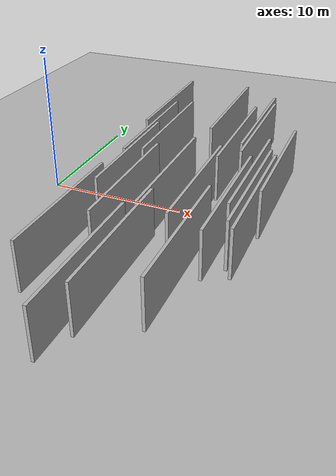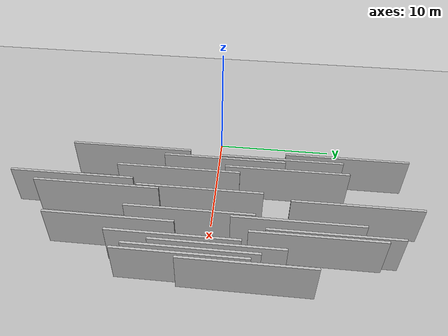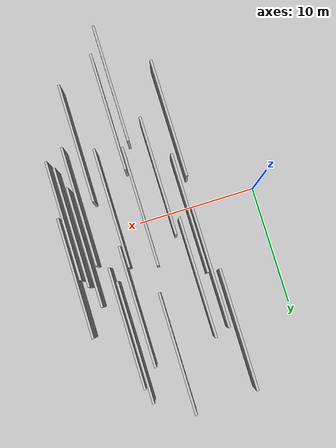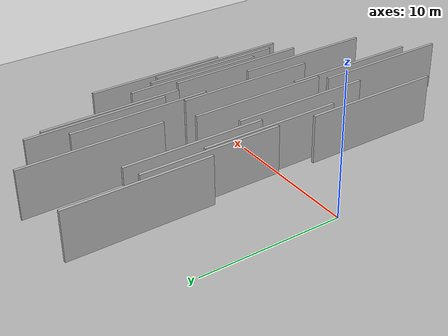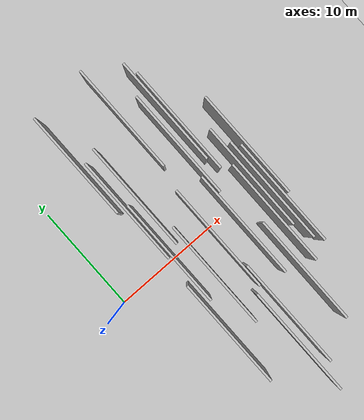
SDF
<?xml version="1.0" encoding="utf-8"?>

<sdf version="1.6">

   <world name="default">

      <gui fullscreen="0">

         <camera name="user_camera">

            <pose>-15 0 4.57585 0 0 0</pose>

            <view_controller>orbit</view_controller>

         </camera>

      </gui>

      <scene>

         <sky>

           <clouds>

             <speed>12</speed>

           </clouds>

         </sky>

         <ambient>0.4 0.4 0.4 1</ambient>

         <background>0.7 0.7 0.7 1</background>

         <shadows>1</shadows>

      </scene>

      <gravity>0 0 -9.8066</gravity>

      <magnetic_field>6e-06 2.3e-05 -4.2e-05</magnetic_field>

      <physics default="0" name="default_physics" type="ode">

         <ode>

            <solver>

               <type>quick</type>

               <iters>10</iters>

               <sor>1.0</sor>

               <use_dynamic_moi_rescaling>0</use_dynamic_moi_rescaling>

            </solver>

            <constraints>

               <cfm>0</cfm>

               <erp>0.2</erp>

               <contact_max_correcting_vel>100</contact_max_correcting_vel>

               <contact_surface_layer>0.001</contact_surface_layer>

            </constraints>

         </ode>

         <max_step_size>0.004</max_step_size>

         <real_time_factor>1</real_time_factor>

         <real_time_update_rate>250</real_time_update_rate>

      </physics>

      <light name="sun" type="directional">

         <cast_shadows>1</cast_shadows>

         <pose>0 0 10 0 0 0</pose>

         <diffuse>0.8 0.8 0.8 1</diffuse>

         <specular>0.2 0.2 0.2 1</specular>

         <attenuation>

            <range>1000</range>

            <constant>0.9</constant>

            <linear>0.01</linear>

            <quadratic>0.001</quadratic>

         </attenuation>

         <direction>-0.5 0.1 -0.9</direction>

      </light>

      <include>

         <name>ground_plane_1</name>

         <uri>model://HANNAS_ground_plane</uri>

         <pose>0 0 0  0 0 0</pose>

      </include>

      <include>

         <name>ground_plane_2</name>

         <uri>model://HANNAS_ground_plane</uri>

         <pose>100 0 0  0 0 0</pose>

      </include>

      <model name="HANNAS_wall_1">

         <static>1</static>

         <pose frame="">13.4154 8.0576 0.0 0.000000 0.000000 1.570796</pose>

         <link name="link">

            <pose frame="">0 0 2.00 0 0 0</pose>

            <collision name="collision">

               <geometry>

                  <box>

                     <size>10.00 0.2 4.00</size>

                  </box>

               </geometry>

               <max_contacts>10</max_contacts>

               <surface>

                  <contact>

                     <ode/>

                  </contact>

                  <bounce/>

                  <friction>

                     <torsional>

                        <ode/>

                     </torsional>

                     <ode/>

                  </friction>

               </surface>

            </collision>

            <visual name="visual">

               <cast_shadows>0</cast_shadows>

               <geometry>

                  <box>

                     <size>10.00 0.2 4.00</size>

                  </box>

               </geometry>

               <material>

                  <script>

                     <uri>model://HANNAS_wall/materials/scripts</uri>

                     <uri>model://HANNAS_wall/materials/textures</uri>

                     <name>vrc/HANNAS_wall</name>

                  </script>

               </material>

            </visual>

            <self_collide>0</self_collide>

            <enable_wind>0</enable_wind>

            <kinematic>0</kinematic>

         </link>

      </model>

      <model name="HANNAS_wall_2">

         <static>1</static>

         <pose frame="">13.0893 9.3029 0.0 0.000000 0.000000 1.570796</pose>

         <link name="link">

            <pose frame="">0 0 2.00 0 0 0</pose>

            <collision name="collision">

               <geometry>

                  <box>

                     <size>10.00 0.2 4.00</size>

                  </box>

               </geometry>

               <max_contacts>10</max_contacts>

               <surface>

                  <contact>

                     <ode/>

                  </contact>

                  <bounce/>

                  <friction>

                     <torsional>

                        <ode/>

                     </torsional>

                     <ode/>

                  </friction>

               </surface>

            </collision>

            <visual name="visual">

               <cast_shadows>0</cast_shadows>

               <geometry>

                  <box>

                     <size>10.00 0.2 4.00</size>

                  </box>

               </geometry>

               <material>

                  <script>

                     <uri>model://HANNAS_wall/materials/scripts</uri>

                     <uri>model://HANNAS_wall/materials/textures</uri>

                     <name>vrc/HANNAS_wall</name>

                  </script>

               </material>

            </visual>

            <self_collide>0</self_collide>

            <enable_wind>0</enable_wind>

            <kinematic>0</kinematic>

         </link>

      </model>

      <model name="HANNAS_wall_3">

         <static>1</static>

         <pose frame="">5.2799 -7.1702 0.0 0.000000 0.000000 1.570796</pose>

         <link name="link">

            <pose frame="">0 0 2.00 0 0 0</pose>

            <collision name="collision">

               <geometry>

                  <box>

                     <size>10.00 0.2 4.00</size>

                  </box>

               </geometry>

               <max_contacts>10</max_contacts>

               <surface>

                  <contact>

                     <ode/>

                  </contact>

                  <bounce/>

                  <friction>

                     <torsional>

                        <ode/>

                     </torsional>

                     <ode/>

                  </friction>

               </surface>

            </collision>

            <visual name="visual">

               <cast_shadows>0</cast_shadows>

               <geometry>

                  <box>

                     <size>10.00 0.2 4.00</size>

                  </box>

               </geometry>

               <material>

                  <script>

                     <uri>model://HANNAS_wall/materials/scripts</uri>

                     <uri>model://HANNAS_wall/materials/textures</uri>

                     <name>vrc/HANNAS_wall</name>

                  </script>

               </material>

            </visual>

            <self_collide>0</self_collide>

            <enable_wind>0</enable_wind>

            <kinematic>0</kinematic>

         </link>

      </model>

      <model name="HANNAS_wall_4">

         <static>1</static>

         <pose frame="">15.3475 -0.9130 0.0 0.000000 0.000000 1.570796</pose>

         <link name="link">

            <pose frame="">0 0 2.00 0 0 0</pose>

            <collision name="collision">

               <geometry>

                  <box>

                     <size>10.00 0.2 4.00</size>

                  </box>

               </geometry>

               <max_contacts>10</max_contacts>

               <surface>

                  <contact>

                     <ode/>

                  </contact>

                  <bounce/>

                  <friction>

                     <torsional>

                        <ode/>

                     </torsional>

                     <ode/>

                  </friction>

               </surface>

            </collision>

            <visual name="visual">

               <cast_shadows>0</cast_shadows>

               <geometry>

                  <box>

                     <size>10.00 0.2 4.00</size>

                  </box>

               </geometry>

               <material>

                  <script>

                     <uri>model://HANNAS_wall/materials/scripts</uri>

                     <uri>model://HANNAS_wall/materials/textures</uri>

                     <name>vrc/HANNAS_wall</name>

                  </script>

               </material>

            </visual>

            <self_collide>0</self_collide>

            <enable_wind>0</enable_wind>

            <kinematic>0</kinematic>

         </link>

      </model>

      <model name="HANNAS_wall_5">

         <static>1</static>

         <pose frame="">5.6187 5.3972 0.0 0.000000 0.000000 1.570796</pose>

         <link name="link">

            <pose frame="">0 0 2.00 0 0 0</pose>

            <collision name="collision">

               <geometry>

                  <box>

                     <size>10.00 0.2 4.00</size>

                  </box>

               </geometry>

               <max_contacts>10</max_contacts>

               <surface>

                  <contact>

                     <ode/>

                  </contact>

                  <bounce/>

                  <friction>

                     <torsional>

                        <ode/>

                     </torsional>

                     <ode/>

                  </friction>

               </surface>

            </collision>

            <visual name="visual">

               <cast_shadows>0</cast_shadows>

               <geometry>

                  <box>

                     <size>10.00 0.2 4.00</size>

                  </box>

               </geometry>

               <material>

                  <script>

                     <uri>model://HANNAS_wall/materials/scripts</uri>

                     <uri>model://HANNAS_wall/materials/textures</uri>

                     <name>vrc/HANNAS_wall</name>

                  </script>

               </material>

            </visual>

            <self_collide>0</self_collide>

            <enable_wind>0</enable_wind>

            <kinematic>0</kinematic>

         </link>

      </model>

      <model name="HANNAS_wall_6">

         <static>1</static>

         <pose frame="">14.8016 0.9131 0.0 0.000000 0.000000 1.570796</pose>

         <link name="link">

            <pose frame="">0 0 2.00 0 0 0</pose>

            <collision name="collision">

               <geometry>

                  <box>

                     <size>10.00 0.2 4.00</size>

                  </box>

               </geometry>

               <max_contacts>10</max_contacts>

               <surface>

                  <contact>

                     <ode/>

                  </contact>

                  <bounce/>

                  <friction>

                     <torsional>

                        <ode/>

                     </torsional>

                     <ode/>

                  </friction>

               </surface>

            </collision>

            <visual name="visual">

               <cast_shadows>0</cast_shadows>

               <geometry>

                  <box>

                     <size>10.00 0.2 4.00</size>

                  </box>

               </geometry>

               <material>

                  <script>

                     <uri>model://HANNAS_wall/materials/scripts</uri>

                     <uri>model://HANNAS_wall/materials/textures</uri>

                     <name>vrc/HANNAS_wall</name>

                  </script>

               </material>

            </visual>

            <self_collide>0</self_collide>

            <enable_wind>0</enable_wind>

            <kinematic>0</kinematic>

         </link>

      </model>

      <model name="HANNAS_wall_7">

         <static>1</static>

         <pose frame="">5.9342 0.7307 0.0 0.000000 0.000000 1.570796</pose>

         <link name="link">

            <pose frame="">0 0 2.00 0 0 0</pose>

            <collision name="collision">

               <geometry>

                  <box>

                     <size>10.00 0.2 4.00</size>

                  </box>

               </geometry>

               <max_contacts>10</max_contacts>

               <surface>

                  <contact>

                     <ode/>

                  </contact>

                  <bounce/>

                  <friction>

                     <torsional>

                        <ode/>

                     </torsional>

                     <ode/>

                  </friction>

               </surface>

            </collision>

            <visual name="visual">

               <cast_shadows>0</cast_shadows>

               <geometry>

                  <box>

                     <size>10.00 0.2 4.00</size>

                  </box>

               </geometry>

               <material>

                  <script>

                     <uri>model://HANNAS_wall/materials/scripts</uri>

                     <uri>model://HANNAS_wall/materials/textures</uri>

                     <name>vrc/HANNAS_wall</name>

                  </script>

               </material>

            </visual>

            <self_collide>0</self_collide>

            <enable_wind>0</enable_wind>

            <kinematic>0</kinematic>

         </link>

      </model>

      <model name="HANNAS_wall_8">

         <static>1</static>

         <pose frame="">9.5977 -0.9479 0.0 0.000000 0.000000 1.570796</pose>

         <link name="link">

            <pose frame="">0 0 2.00 0 0 0</pose>

            <collision name="collision">

               <geometry>

                  <box>

                     <size>10.00 0.2 4.00</size>

                  </box>

               </geometry>

               <max_contacts>10</max_contacts>

               <surface>

                  <contact>

                     <ode/>

                  </contact>

                  <bounce/>

                  <friction>

                     <torsional>

                        <ode/>

                     </torsional>

                     <ode/>

                  </friction>

               </surface>

            </collision>

            <visual name="visual">

               <cast_shadows>0</cast_shadows>

               <geometry>

                  <box>

                     <size>10.00 0.2 4.00</size>

                  </box>

               </geometry>

               <material>

                  <script>

                     <uri>model://HANNAS_wall/materials/scripts</uri>

                     <uri>model://HANNAS_wall/materials/textures</uri>

                     <name>vrc/HANNAS_wall</name>

                  </script>

               </material>

            </visual>

            <self_collide>0</self_collide>

            <enable_wind>0</enable_wind>

            <kinematic>0</kinematic>

         </link>

      </model>

      <model name="HANNAS_wall_9">

         <static>1</static>

         <pose frame="">16.1954 3.0802 0.0 0.000000 0.000000 1.570796</pose>

         <link name="link">

            <pose frame="">0 0 2.00 0 0 0</pose>

            <collision name="collision">

               <geometry>

                  <box>

                     <size>10.00 0.2 4.00</size>

                  </box>

               </geometry>

               <max_contacts>10</max_contacts>

               <surface>

                  <contact>

                     <ode/>

                  </contact>

                  <bounce/>

                  <friction>

                     <torsional>

                        <ode/>

                     </torsional>

                     <ode/>

                  </friction>

               </surface>

            </collision>

            <visual name="visual">

               <cast_shadows>0</cast_shadows>

               <geometry>

                  <box>

                     <size>10.00 0.2 4.00</size>

                  </box>

               </geometry>

               <material>

                  <script>

                     <uri>model://HANNAS_wall/materials/scripts</uri>

                     <uri>model://HANNAS_wall/materials/textures</uri>

                     <name>vrc/HANNAS_wall</name>

                  </script>

               </material>

            </visual>

            <self_collide>0</self_collide>

            <enable_wind>0</enable_wind>

            <kinematic>0</kinematic>

         </link>

      </model>

      <model name="HANNAS_wall_10">

         <static>1</static>

         <pose frame="">14.2894 -2.3630 0.0 0.000000 0.000000 1.570796</pose>

         <link name="link">

            <pose frame="">0 0 2.00 0 0 0</pose>

            <collision name="collision">

               <geometry>

                  <box>

                     <size>10.00 0.2 4.00</size>

                  </box>

               </geometry>

               <max_contacts>10</max_contacts>

               <surface>

                  <contact>

                     <ode/>

                  </contact>

                  <bounce/>

                  <friction>

                     <torsional>

                        <ode/>

                     </torsional>

                     <ode/>

                  </friction>

               </surface>

            </collision>

            <visual name="visual">

               <cast_shadows>0</cast_shadows>

               <geometry>

                  <box>

                     <size>10.00 0.2 4.00</size>

                  </box>

               </geometry>

               <material>

                  <script>

                     <uri>model://HANNAS_wall/materials/scripts</uri>

                     <uri>model://HANNAS_wall/materials/textures</uri>

                     <name>vrc/HANNAS_wall</name>

                  </script>

               </material>

            </visual>

            <self_collide>0</self_collide>

            <enable_wind>0</enable_wind>

            <kinematic>0</kinematic>

         </link>

      </model>

      <model name="HANNAS_wall_11">

         <static>1</static>

         <pose frame="">7.4995 -2.9087 0.0 0.000000 0.000000 1.570796</pose>

         <link name="link">

            <pose frame="">0 0 2.00 0 0 0</pose>

            <collision name="collision">

               <geometry>

                  <box>

                     <size>10.00 0.2 4.00</size>

                  </box>

               </geometry>

               <max_contacts>10</max_contacts>

               <surface>

                  <contact>

                     <ode/>

                  </contact>

                  <bounce/>

                  <friction>

                     <torsional>

                        <ode/>

                     </torsional>

                     <ode/>

                  </friction>

               </surface>

            </collision>

            <visual name="visual">

               <cast_shadows>0</cast_shadows>

               <geometry>

                  <box>

                     <size>10.00 0.2 4.00</size>

                  </box>

               </geometry>

               <material>

                  <script>

                     <uri>model://HANNAS_wall/materials/scripts</uri>

                     <uri>model://HANNAS_wall/materials/textures</uri>

                     <name>vrc/HANNAS_wall</name>

                  </script>

               </material>

            </visual>

            <self_collide>0</self_collide>

            <enable_wind>0</enable_wind>

            <kinematic>0</kinematic>

         </link>

      </model>

      <model name="HANNAS_wall_12">

         <static>1</static>

         <pose frame="">13.0656 -7.3665 0.0 0.000000 0.000000 1.570796</pose>

         <link name="link">

            <pose frame="">0 0 2.00 0 0 0</pose>

            <collision name="collision">

               <geometry>

                  <box>

                     <size>10.00 0.2 4.00</size>

                  </box>

               </geometry>

               <max_contacts>10</max_contacts>

               <surface>

                  <contact>

                     <ode/>

                  </contact>

                  <bounce/>

                  <friction>

                     <torsional>

                        <ode/>

                     </torsional>

                     <ode/>

                  </friction>

               </surface>

            </collision>

            <visual name="visual">

               <cast_shadows>0</cast_shadows>

               <geometry>

                  <box>

                     <size>10.00 0.2 4.00</size>

                  </box>

               </geometry>

               <material>

                  <script>

                     <uri>model://HANNAS_wall/materials/scripts</uri>

                     <uri>model://HANNAS_wall/materials/textures</uri>

                     <name>vrc/HANNAS_wall</name>

                  </script>

               </material>

            </visual>

            <self_collide>0</self_collide>

            <enable_wind>0</enable_wind>

            <kinematic>0</kinematic>

         </link>

      </model>

      <model name="HANNAS_wall_13">

         <static>1</static>

         <pose frame="">9.8598 -9.1015 0.0 0.000000 0.000000 1.570796</pose>

         <link name="link">

            <pose frame="">0 0 2.00 0 0 0</pose>

            <collision name="collision">

               <geometry>

                  <box>

                     <size>10.00 0.2 4.00</size>

                  </box>

               </geometry>

               <max_contacts>10</max_contacts>

               <surface>

                  <contact>

                     <ode/>

                  </contact>

                  <bounce/>

                  <friction>

                     <torsional>

                        <ode/>

                     </torsional>

                     <ode/>

                  </friction>

               </surface>

            </collision>

            <visual name="visual">

               <cast_shadows>0</cast_shadows>

               <geometry>

                  <box>

                     <size>10.00 0.2 4.00</size>

                  </box>

               </geometry>

               <material>

                  <script>

                     <uri>model://HANNAS_wall/materials/scripts</uri>

                     <uri>model://HANNAS_wall/materials/textures</uri>

                     <name>vrc/HANNAS_wall</name>

                  </script>

               </material>

            </visual>

            <self_collide>0</self_collide>

            <enable_wind>0</enable_wind>

            <kinematic>0</kinematic>

         </link>

      </model>

      <model name="HANNAS_wall_14">

         <static>1</static>

         <pose frame="">4.9589 10.7327 0.0 0.000000 0.000000 1.570796</pose>

         <link name="link">

            <pose frame="">0 0 2.00 0 0 0</pose>

            <collision name="collision">

               <geometry>

                  <box>

                     <size>10.00 0.2 4.00</size>

                  </box>

               </geometry>

               <max_contacts>10</max_contacts>

               <surface>

                  <contact>

                     <ode/>

                  </contact>

                  <bounce/>

                  <friction>

                     <torsional>

                        <ode/>

                     </torsional>

                     <ode/>

                  </friction>

               </surface>

            </collision>

            <visual name="visual">

               <cast_shadows>0</cast_shadows>

               <geometry>

                  <box>

                     <size>10.00 0.2 4.00</size>

                  </box>

               </geometry>

               <material>

                  <script>

                     <uri>model://HANNAS_wall/materials/scripts</uri>

                     <uri>model://HANNAS_wall/materials/textures</uri>

                     <name>vrc/HANNAS_wall</name>

                  </script>

               </material>

            </visual>

            <self_collide>0</self_collide>

            <enable_wind>0</enable_wind>

            <kinematic>0</kinematic>

         </link>

      </model>

      <model name="HANNAS_wall_15">

         <static>1</static>

         <pose frame="">11.8332 -1.4723 0.0 0.000000 0.000000 1.570796</pose>

         <link name="link">

            <pose frame="">0 0 2.00 0 0 0</pose>

            <collision name="collision">

               <geometry>

                  <box>

                     <size>10.00 0.2 4.00</size>

                  </box>

               </geometry>

               <max_contacts>10</max_contacts>

               <surface>

                  <contact>

                     <ode/>

                  </contact>

                  <bounce/>

                  <friction>

                     <torsional>

                        <ode/>

                     </torsional>

                     <ode/>

                  </friction>

               </surface>

            </collision>

            <visual name="visual">

               <cast_shadows>0</cast_shadows>

               <geometry>

                  <box>

                     <size>10.00 0.2 4.00</size>

                  </box>

               </geometry>

               <material>

                  <script>

                     <uri>model://HANNAS_wall/materials/scripts</uri>

                     <uri>model://HANNAS_wall/materials/textures</uri>

                     <name>vrc/HANNAS_wall</name>

                  </script>

               </material>

            </visual>

            <self_collide>0</self_collide>

            <enable_wind>0</enable_wind>

            <kinematic>0</kinematic>

         </link>

      </model>

      <model name="HANNAS_wall_16">

         <static>1</static>

         <pose frame="">12.1340 6.6764 0.0 0.000000 0.000000 1.570796</pose>

         <link name="link">

            <pose frame="">0 0 2.00 0 0 0</pose>

            <collision name="collision">

               <geometry>

                  <box>

                     <size>10.00 0.2 4.00</size>

                  </box>

               </geometry>

               <max_contacts>10</max_contacts>

               <surface>

                  <contact>

                     <ode/>

                  </contact>

                  <bounce/>

                  <friction>

                     <torsional>

                        <ode/>

                     </torsional>

                     <ode/>

                  </friction>

               </surface>

            </collision>

            <visual name="visual">

               <cast_shadows>0</cast_shadows>

               <geometry>

                  <box>

                     <size>10.00 0.2 4.00</size>

                  </box>

               </geometry>

               <material>

                  <script>

                     <uri>model://HANNAS_wall/materials/scripts</uri>

                     <uri>model://HANNAS_wall/materials/textures</uri>

                     <name>vrc/HANNAS_wall</name>

                  </script>

               </material>

            </visual>

            <self_collide>0</self_collide>

            <enable_wind>0</enable_wind>

            <kinematic>0</kinematic>

         </link>

      </model>

      <model name="HANNAS_wall_17">

         <static>1</static>

         <pose frame="">15.8317 -1.6172 0.0 0.000000 0.000000 1.570796</pose>

         <link name="link">

            <pose frame="">0 0 2.00 0 0 0</pose>

            <collision name="collision">

               <geometry>

                  <box>

                     <size>10.00 0.2 4.00</size>

                  </box>

               </geometry>

               <max_contacts>10</max_contacts>

               <surface>

                  <contact>

                     <ode/>

                  </contact>

                  <bounce/>

                  <friction>

                     <torsional>

                        <ode/>

                     </torsional>

                     <ode/>

                  </friction>

               </surface>

            </collision>

            <visual name="visual">

               <cast_shadows>0</cast_shadows>

               <geometry>

                  <box>

                     <size>10.00 0.2 4.00</size>

                  </box>

               </geometry>

               <material>

                  <script>

                     <uri>model://HANNAS_wall/materials/scripts</uri>

                     <uri>model://HANNAS_wall/materials/textures</uri>

                     <name>vrc/HANNAS_wall</name>

                  </script>

               </material>

            </visual>

            <self_collide>0</self_collide>

            <enable_wind>0</enable_wind>

            <kinematic>0</kinematic>

         </link>

      </model>

      <model name="HANNAS_wall_18">

         <static>1</static>

         <pose frame="">8.9780 -11.2971 0.0 0.000000 0.000000 1.570796</pose>

         <link name="link">

            <pose frame="">0 0 2.00 0 0 0</pose>

            <collision name="collision">

               <geometry>

                  <box>

                     <size>10.00 0.2 4.00</size>

                  </box>

               </geometry>

               <max_contacts>10</max_contacts>

               <surface>

                  <contact>

                     <ode/>

                  </contact>

                  <bounce/>

                  <friction>

                     <torsional>

                        <ode/>

                     </torsional>

                     <ode/>

                  </friction>

               </surface>

            </collision>

            <visual name="visual">

               <cast_shadows>0</cast_shadows>

               <geometry>

                  <box>

                     <size>10.00 0.2 4.00</size>

                  </box>

               </geometry>

               <material>

                  <script>

                     <uri>model://HANNAS_wall/materials/scripts</uri>

                     <uri>model://HANNAS_wall/materials/textures</uri>

                     <name>vrc/HANNAS_wall</name>

                  </script>

               </material>

            </visual>

            <self_collide>0</self_collide>

            <enable_wind>0</enable_wind>

            <kinematic>0</kinematic>

         </link>

      </model>

      <model name="HANNAS_wall_19">

         <static>1</static>

         <pose frame="">10.1460 11.1289 0.0 0.000000 0.000000 1.570796</pose>

         <link name="link">

            <pose frame="">0 0 2.00 0 0 0</pose>

            <collision name="collision">

               <geometry>

                  <box>

                     <size>10.00 0.2 4.00</size>

                  </box>

               </geometry>

               <max_contacts>10</max_contacts>

               <surface>

                  <contact>

                     <ode/>

                  </contact>

                  <bounce/>

                  <friction>

                     <torsional>

                        <ode/>

                     </torsional>

                     <ode/>

                  </friction>

               </surface>

            </collision>

            <visual name="visual">

               <cast_shadows>0</cast_shadows>

               <geometry>

                  <box>

                     <size>10.00 0.2 4.00</size>

                  </box>

               </geometry>

               <material>

                  <script>

                     <uri>model://HANNAS_wall/materials/scripts</uri>

                     <uri>model://HANNAS_wall/materials/textures</uri>

                     <name>vrc/HANNAS_wall</name>

                  </script>

               </material>

            </visual>

            <self_collide>0</self_collide>

            <enable_wind>0</enable_wind>

            <kinematic>0</kinematic>

         </link>

      </model>

      <model name="HANNAS_wall_20">

         <static>1</static>

         <pose frame="">6.8549 5.8419 0.0 0.000000 0.000000 1.570796</pose>

         <link name="link">

            <pose frame="">0 0 2.00 0 0 0</pose>

            <collision name="collision">

               <geometry>

                  <box>

                     <size>10.00 0.2 4.00</size>

                  </box>

               </geometry>

               <max_contacts>10</max_contacts>

               <surface>

                  <contact>

                     <ode/>

                  </contact>

                  <bounce/>

                  <friction>

                     <torsional>

                        <ode/>

                     </torsional>

                     <ode/>

                  </friction>

               </surface>

            </collision>

            <visual name="visual">

               <cast_shadows>0</cast_shadows>

               <geometry>

                  <box>

                     <size>10.00 0.2 4.00</size>

                  </box>

               </geometry>

               <material>

                  <script>

                     <uri>model://HANNAS_wall/materials/scripts</uri>

                     <uri>model://HANNAS_wall/materials/textures</uri>

                     <name>vrc/HANNAS_wall</name>

                  </script>

               </material>

            </visual>

            <self_collide>0</self_collide>

            <enable_wind>0</enable_wind>

            <kinematic>0</kinematic>

         </link>

      </model>

   </world>

</sdf>

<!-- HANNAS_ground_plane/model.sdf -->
<sdf version="1.4">
<model name="HANNAS_ground_plane">
  <static>true</static>
    <link name="link">
      <collision name="collision">
        <geometry>
          <plane>
            <normal>0 0 1</normal>
            <size>1000 1000</size>
          </plane>
        </geometry>
        <surface>
          <friction>
            <ode>
              <mu>100</mu>
              <mu2>50</mu2>
            </ode>
          </friction>
        </surface>
      </collision>
      <visual name="visual">
        <cast_shadows>false</cast_shadows>
        <geometry>
          <plane>
            <normal>0 0 1</normal>
            <size>1000 1000</size>
          </plane>
        </geometry>
        <material>
          <script>
            <uri>model://HANNAS_ground_plane/materials/scripts/HANNAS_ground_plane.material</uri>
	    <uri>model://HANNAS_ground_plane/materials/textures</uri>
            <name>HANNASGroundPlane/Image</name>
          </script>
        </material>
      </visual>
    </link>
  </model>
</sdf>
